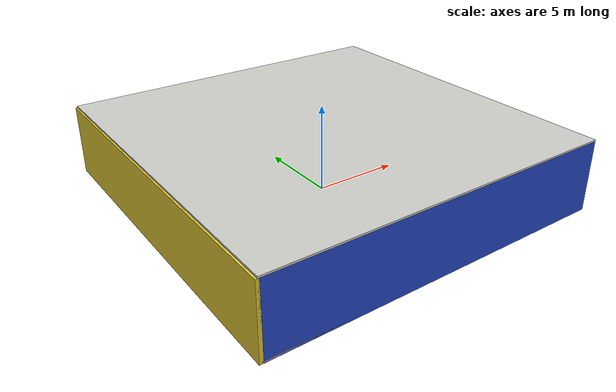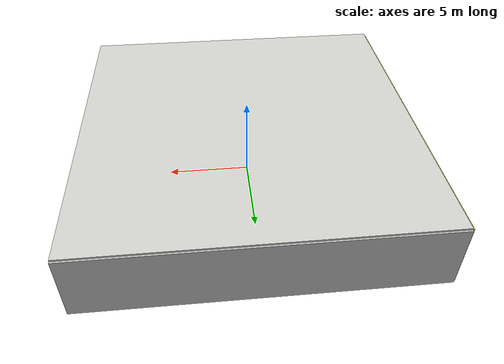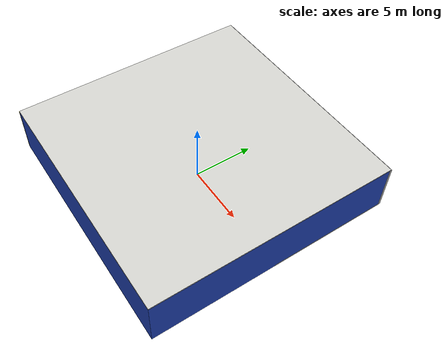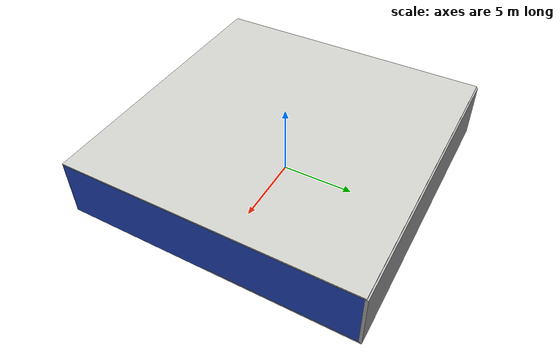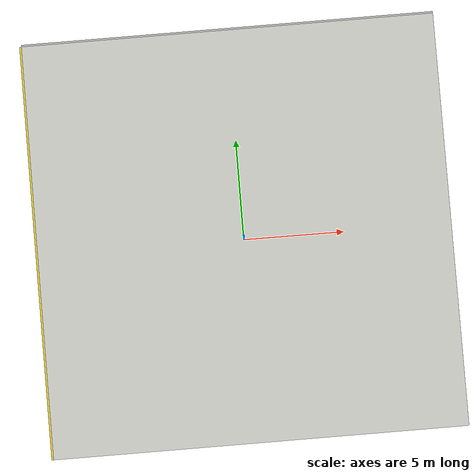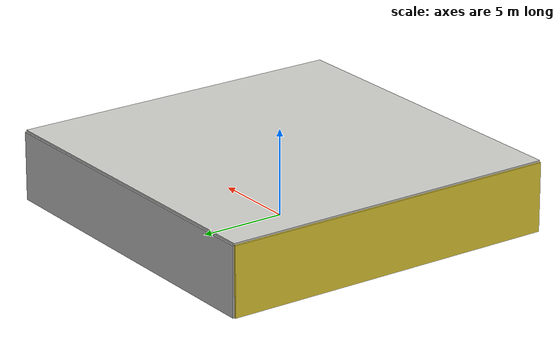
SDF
<sdf version="1.4">
 <world name="default">
  <physics type="ode">
   <max_step_size>0.001</max_step_size>
   <real_time_factor>1</real_time_factor>
   <real_time_update_rate>1000</real_time_update_rate>
   <gravity>0 0 -9.8</gravity>
  </physics>
  <scene><ambient>0.4 0.4 0.4 1</ambient><background>0.7 0.7 0.7 1</background><shadows>1</shadows></scene>
  <model name="Surrounding">
   <static>1</static>
   <link name="Ceiling">
    <collision name="Ceiling_Collision"><geometry><box><size>20 20 0.1</size></box></geometry></collision>
    <visual name="Ceiling_Visual">
     <geometry><box><size>20 20 0.1</size></box></geometry>
     <material>
      <script><uri>file://media/materials/scripts/gazebo.material</uri><name>Gazebo/CeilingTiled</name></script>
     </material>
    </visual>
    <pose>0 0 4.05 0 0 0</pose>
   </link>
   <link name="Wall_South">
    <collision name="Wall_South_Collision">
     <geometry><box><size>20 0 4</size></box></geometry>
     <pose>0 0 2 0 -0 0</pose>
    </collision>
    <visual name="Wall_South_Visual">
     <pose>0 0 2 0 -0 0</pose>
     <geometry><box><size>20 0 4</size></box></geometry>
     <material>
      <script><uri>file://media/materials/scripts/gazebo.material</uri><name>Gazebo/BlueLaser</name></script>
     </material>
    </visual>
    <velocity_decay><linear>0</linear><angular>0</angular></velocity_decay>
    <pose>0 -10 0 0 -0 0</pose>
   </link>
   <link name="Wall_East">
    <collision name="Wall_21_Collision">
     <geometry><box><size>20 0 4</size></box></geometry>
     <pose>0 0 2 0 -0 0</pose>
    </collision>
    <visual name="Wall_21_Visual">
     <pose>0 0 2 0 -0 0</pose>
     <geometry><box><size>20 0 4</size></box></geometry>
     <material>
      <script><uri>file://media/materials/scripts/gazebo.material</uri><name>Gazebo/BlueLaser</name></script>
     </material>
    </visual>
    <velocity_decay><linear>0</linear><angular>0</angular></velocity_decay>
    <pose>10 0 0 0 -0 1.5708</pose>
   </link>
   <link name="Wall_North">
    <collision name="Wall_22_Collision">
     <geometry><box><size>20 0.2 4</size></box></geometry>
     <pose>0 0 2 0 -0 0</pose>
    </collision>
    <visual name="Wall_22_Visual">
     <pose>0 0 2 0 -0 0</pose>
     <geometry><box><size>20 0.2 4</size></box></geometry>
     <material>
      <script><uri>file://media/materials/scripts/gazebo.material</uri><name>Gazebo/JointAnchor</name></script>
     </material>
    </visual>
    <velocity_decay><linear>0</linear><angular>0</angular></velocity_decay>
    <pose>0 10 0 0 -0 0</pose>
   </link>
   <link name="Wall_West">
    <collision name="Wall_23_Collision">
     <geometry><box><size>20 0.2 4</size></box></geometry>
     <pose>0 0 2 0 -0 0</pose>
    </collision>
    <visual name="Wall_23_Visual">
     <pose>0 0 2 0 -0 0</pose>
     <geometry><box><size>20 0.2 4</size></box></geometry>
     <material>
      <script><uri>file://media/materials/scripts/gazebo.material</uri><name>Gazebo/ZincYellow</name></script>
     </material>
    </visual>
    <velocity_decay><linear>0</linear><angular>0</angular></velocity_decay>
    <pose>-10 0 0 0 0 -1.5708</pose>
   </link>
   <link name="Ground_link">
    <collision name="collision">
     <pose>0 0 .05 0 -0 0</pose>
     <geometry><box><size>20 20 0.1</size></box></geometry>
    </collision>
    <visual name="visual">
     <pose>0 0 .05 0 -0 0</pose>
     <geometry><box><size>20 20 0.1</size></box></geometry>
     <material>
      <script><uri>file://media/materials/scripts/gazebo.material</uri><name>Gazebo/Pioneer2Body</name></script>
     </material>
    </visual>
   </link>
   <static>1</static>
  </model>
  <spherical_coordinates>
   <surface_model>EARTH_WGS84</surface_model>
   <latitude_deg>0</latitude_deg>
   <longitude_deg>0</longitude_deg>
   <elevation>0</elevation>
   <heading_deg>0</heading_deg>
  </spherical_coordinates>
  <light name="lightball_0" type="diffuse">
   <diffuse>0.8 0.8 0.8 1</diffuse>
   <specular>0.2 0.2 0.2 1</specular>
   <attenuation>
    <range>100</range>
    <constant>0.7</constant>
    <linear>0.01</linear>
    <quadratic>0.001</quadratic>
   </attenuation>
   <direction>-0.5 0.1 -0.9</direction>
   <pose>1.16155036056 -6.20217201834 2.44982268548 0 0 0</pose>
  </light>
  <light name="lightball_1" type="diffuse">
   <diffuse>0.8 0.8 0.8 1</diffuse>
   <specular>0.2 0.2 0.2 1</specular>
   <attenuation>
    <range>100</range>
    <constant>0.7</constant>
    <linear>0.01</linear>
    <quadratic>0.001</quadratic>
   </attenuation>
   <direction>-0.5 0.1 -0.9</direction>
   <pose>6.27709707493 -9.23225085441 3.34910532989 0 0 0</pose>
  </light>
  <light name="lightball_2" type="diffuse">
   <diffuse>0.8 0.8 0.8 1</diffuse>
   <specular>0.2 0.2 0.2 1</specular>
   <attenuation>
    <range>100</range>
    <constant>0.7</constant>
    <linear>0.01</linear>
    <quadratic>0.001</quadratic>
   </attenuation>
   <direction>-0.5 0.1 -0.9</direction>
   <pose>4.38322816176 -3.94230680346 1.53889888358 0 0 0</pose>
  </light>
  <light name="lightball_3" type="diffuse">
   <diffuse>0.8 0.8 0.8 1</diffuse>
   <specular>0.2 0.2 0.2 1</specular>
   <attenuation>
    <range>100</range>
    <constant>0.7</constant>
    <linear>0.01</linear>
    <quadratic>0.001</quadratic>
   </attenuation>
   <direction>-0.5 0.1 -0.9</direction>
   <pose>-4.43868544958 -8.24880636327 2.87649377899 0 0 0</pose>
  </light>
  <light name="lightball_4" type="diffuse">
   <diffuse>0.8 0.8 0.8 1</diffuse>
   <specular>0.2 0.2 0.2 1</specular>
   <attenuation>
    <range>100</range>
    <constant>0.7</constant>
    <linear>0.01</linear>
    <quadratic>0.001</quadratic>
   </attenuation>
   <direction>-0.5 0.1 -0.9</direction>
   <pose>-7.95869930169 4.29964620362 2.07999902564 0 0 0</pose>
  </light>
  <light name="lightball_5" type="diffuse">
   <diffuse>0.8 0.8 0.8 1</diffuse>
   <specular>0.2 0.2 0.2 1</specular>
   <attenuation>
    <range>100</range>
    <constant>0.7</constant>
    <linear>0.01</linear>
    <quadratic>0.001</quadratic>
   </attenuation>
   <direction>-0.5 0.1 -0.9</direction>
   <pose>-5.33740133415 -1.70027888765 2.43714187837 0 0 0</pose>
  </light>
  <light name="lightball_6" type="diffuse">
   <diffuse>0.8 0.8 0.8 1</diffuse>
   <specular>0.2 0.2 0.2 1</specular>
   <attenuation>
    <range>100</range>
    <constant>0.7</constant>
    <linear>0.01</linear>
    <quadratic>0.001</quadratic>
   </attenuation>
   <direction>-0.5 0.1 -0.9</direction>
   <pose>-7.2815102096 -0.0875897709667 0.812180673969 0 0 0</pose>
  </light>
  <include><uri>model://cabinet</uri><pose>-7.85376249304 -0.793987595924 0 0 0 1.83619630594</pose></include>
  <include><uri>model://cabinet</uri><pose>-3.74140412264 -4.01833956944 0 0 0 2.26110380763</pose></include>
  <include><uri>model://table</uri><pose>-2.27165861195 -7.35466601138 0 0 0 1.33045506712</pose></include>
  <include>
   <uri>model://robocup_3Dsim_goal</uri>
   <pose>-1.59824564422 -5.28441835259 0 0 0 3.07859886992</pose>
  </include>
  <include><uri>model://cabinet</uri><pose>1.02616272572 6.95116432599 0 0 0 2.6015673885</pose></include>
  <include><uri>model://cabinet</uri><pose>7.41594678243 -4.26684883739 0 0 0 1.04644132158</pose></include>
 </world>
</sdf>

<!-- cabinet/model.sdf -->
<sdf version="1.5">
  <model name="cabinet">
    <static>true</static>
    <link name="cabinet_bottom_plate">
      <inertial>
        <pose>0 0 -1 0 0 0</pose>
        <inertia>
          <ixx>2.050000</ixx>
          <ixy>0</ixy>
          <ixz>0</ixz>
          <iyy>2.050000</iyy>
          <iyz>0</iyz>
          <izz>2.050000</izz>
        </inertia>
        <mass>25.000000</mass>
      </inertial>
      <collision name="cabinet_bottom_plate_geom">
        <pose>0 0 0.010000 0 0 0</pose>
        <geometry>
          <box>
            <size>0.450000 0.450000 0.020000</size>
          </box>
        </geometry>
      </collision>
      <visual name="cabinet_bottom_plate_geom_visual">
        <pose>0 0 0.010000 0 0 0</pose>
        <geometry>
          <box>
            <size>0.450000 0.450000 0.020000</size>
          </box>
        </geometry>
        <material>
          <script>
            <uri>model://media/materials/scripts/gazebo.material</uri>
            <name>Gazebo/Wood</name>
          </script>
        </material>
      </visual>
      <collision name="cabinet_bottom_plate_geom_cabinet_back_plate">
        <pose>0.235000 0 0.510000 0 0 0</pose>
        <geometry>
          <box>
            <size>0.020000 0.450000 1.020000</size>
          </box>
        </geometry>
      </collision>
      <visual name="cabinet_bottom_plate_geom_cabinet_back_plate_visual">
        <pose>0.235000 0 0.510000 0 0 0</pose>
        <geometry>
          <box>
            <size>0.020000 0.450000 1.020000</size>
          </box>
        </geometry>
        <material>
          <script>
            <uri>model://media/materials/scripts/gazebo.material</uri>
            <name>Gazebo/Wood</name>
          </script>
        </material>
      </visual>
      <collision name="cabinet_bottom_plate_geom_cabinet_left_plate">
        <pose>0 0.235000 0.510000 0 0 0</pose>
        <geometry>
          <box>
            <size>0.450000 0.020000 1.020000</size>
          </box>
        </geometry>
      </collision>
      <visual name="cabinet_bottom_plate_geom_cabinet_left_plate_visual">
        <pose>0 0.235000 0.510000 0 0 0</pose>
        <geometry>
          <box>
            <size>0.450000 0.020000 1.020000</size>
          </box>
        </geometry>
        <material>
          <script>
            <uri>model://media/materials/scripts/gazebo.material</uri>
            <name>Gazebo/Wood</name>
          </script>
        </material>
      </visual>
      <collision name="cabinet_bottom_plate_geom_cabinet_middle_plate">
        <pose>0 0 0.510000 0 0 0</pose>
        <geometry>
          <box>
            <size>0.450000 0.450000 0.020000</size>
          </box>
        </geometry>
      </collision>
      <visual name="cabinet_bottom_plate_geom_cabinet_middle_plate_visual">
        <pose>0 0 0.510000 0 0 0</pose>
        <geometry>
          <box>
            <size>0.450000 0.450000 0.020000</size>
          </box>
        </geometry>
        <material>
          <script>
            <uri>model://media/materials/scripts/gazebo.material</uri>
            <name>Gazebo/Wood</name>
          </script>
        </material>
      </visual>
      <collision name="cabinet_bottom_plate_geom_cabinet_right_plate">
        <pose>0 -0.235000 0.510000 0 0 0</pose>
        <geometry>
          <box>
            <size>0.450000 0.020000 1.020000</size>
          </box>
        </geometry>
      </collision>
      <visual name="cabinet_bottom_plate_geom_cabinet_right_plate_visual">
        <pose>0 -0.235000 0.510000 0 0 0</pose>
        <geometry>
          <box>
            <size>0.450000 0.020000 1.020000</size>
          </box>
        </geometry>
        <material>
          <script>
            <uri>model://media/materials/scripts/gazebo.material</uri>
            <name>Gazebo/Wood</name>
          </script>
        </material>
      </visual>
      <collision name="cabinet_bottom_plate_geom_cabinet_top_plate">
        <pose>0 0 1.010000 0 0 0</pose>
        <geometry>
          <box>
            <size>0.450000 0.450000 0.020000</size>
          </box>
        </geometry>
      </collision>
      <visual name="cabinet_bottom_plate_geom_cabinet_top_plate_visual">
        <pose>0 0 1.010000 0 0 0</pose>
        <geometry>
          <box>
            <size>0.450000 0.450000 0.020000</size>
          </box>
        </geometry>
        <material>
          <script>
            <uri>model://media/materials/scripts/gazebo.material</uri>
            <name>Gazebo/Wood</name>
          </script>
        </material>
      </visual>
    </link>
  </model>
</sdf>

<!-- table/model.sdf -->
<sdf version="1.5">
  <model name="table">
    <static>true</static>
    <link name="link">
      <collision name="surface">
        <pose>0 0 1.0 0 0 0</pose>
        <geometry>
          <box>
            <size>1.5 0.8 0.03</size>
          </box>
        </geometry>
        <surface>
          <friction>
            <ode>
              <mu>0.6</mu>
              <mu2>0.6</mu2>
            </ode>
          </friction>
        </surface>
      </collision>
      <visual name="visual1">
        <pose>0 0 1.0 0 0 0</pose>
        <geometry>
          <box>
            <size>1.5 0.8 0.03</size>
          </box>
        </geometry>
        <material>
          <script>
            <uri>model://media/materials/scripts/gazebo.material</uri>
            <name>Gazebo/Wood</name>
          </script>
        </material>
      </visual>
      <collision name="front_left_leg">
        <pose>0.68 0.38 0.5 0 0 0</pose>
        <geometry>
          <cylinder>
            <radius>0.02</radius>
            <length>1.0</length>
          </cylinder>
        </geometry>
      </collision>
      <visual name="front_left_leg">
        <pose>0.68 0.38 0.5 0 0 0</pose>
        <geometry>
          <cylinder>
            <radius>0.02</radius>
            <length>1.0</length>
          </cylinder>
        </geometry>
        <material>
          <script>
            <uri>model://media/materials/scripts/gazebo.material</uri>
            <name>Gazebo/Grey</name>
          </script>
        </material>
      </visual>
      <collision name="front_right_leg">
        <pose>0.68 -0.38 0.5 0 0 0</pose>
        <geometry>
          <cylinder>
            <radius>0.02</radius>
            <length>1.0</length>
          </cylinder>
        </geometry>
      </collision>
      <visual name="front_right_leg">
        <pose>0.68 -0.38 0.5 0 0 0</pose>
        <geometry>
          <cylinder>
            <radius>0.02</radius>
            <length>1.0</length>
          </cylinder>
        </geometry>
        <material>
          <script>
            <uri>model://media/materials/scripts/gazebo.material</uri>
            <name>Gazebo/Grey</name>
          </script>
        </material>
      </visual>
      <collision name="back_right_leg">
        <pose>-0.68 -0.38 0.5 0 0 0</pose>
        <geometry>
          <cylinder>
            <radius>0.02</radius>
            <length>1.0</length>
          </cylinder>
        </geometry>
      </collision>
      <visual name="back_right_leg">
        <pose>-0.68 -0.38 0.5 0 0 0</pose>
        <geometry>
          <cylinder>
            <radius>0.02</radius>
            <length>1.0</length>
          </cylinder>
        </geometry>
        <material>
          <script>
            <uri>model://media/materials/scripts/gazebo.material</uri>
            <name>Gazebo/Grey</name>
          </script>
        </material>
      </visual>
      <collision name="back_left_leg">
        <pose>-0.68 0.38 0.5 0 0 0</pose>
        <geometry>
          <cylinder>
            <radius>0.02</radius>
            <length>1.0</length>
          </cylinder>
        </geometry>
      </collision>
      <visual name="back_left_leg">
        <pose>-0.68 0.38 0.5 0 0 0</pose>
        <geometry>
          <cylinder>
            <radius>0.02</radius>
            <length>1.0</length>
          </cylinder>
        </geometry>
        <material>
          <script>
            <uri>model://media/materials/scripts/gazebo.material</uri>
            <name>Gazebo/Grey</name>
          </script>
        </material>
      </visual>
    </link>
  </model>
</sdf>

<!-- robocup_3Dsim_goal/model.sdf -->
<sdf version="1.5">
  <model name="robocup_3d_goal">
    <static>true</static>
    <link name="left_post">
      <pose>0 1.05 0.45 0 0 0</pose>
      <collision name="collision">
        <geometry>
          <cylinder>
            <radius>0.05</radius>
            <length>0.9</length>
          </cylinder>
        </geometry>
      </collision>
      <visual name="visual">
        <geometry>
          <cylinder>
            <radius>0.05</radius>
            <length>0.9</length>
          </cylinder>
        </geometry>
        <material>
          <script>
            <uri>file://media/materials/scripts/gazebo.material</uri>
            <name>Gazebo/ZincYellow</name>
          </script>
        </material>
      </visual>
    </link>
    <link name="left_support_horiz_lower">
      <pose>0.30 1.05 0.01 0 0 0</pose>
      <collision name="collision">
        <geometry>
          <box>
            <size>0.50 0.02 0.02</size>
          </box>
        </geometry>
      </collision>
      <visual name="visual">
        <geometry>
          <box>
            <size>0.50 0.02 0.02</size>
          </box>
        </geometry>
        <material>
          <script>
            <uri>file://media/materials/scripts/gazebo.material</uri>
            <name>Gazebo/White</name>
          </script>
        </material>
      </visual>
    </link>
    <link name="left_support_horiz_upper">
      <pose>0.30 1.05 0.79 0 0 0</pose>
      <collision name="collision">
        <geometry>
          <box>
            <size>0.50 0.02 0.02</size>
          </box>
        </geometry>
      </collision>
      <visual name="visual">
        <geometry>
          <box>
            <size>0.50 0.02 0.02</size>
          </box>
        </geometry>
        <material>
          <script>
            <uri>file://media/materials/scripts/gazebo.material</uri>
            <name>Gazebo/White</name>
          </script>
        </material>
      </visual>
    </link>
    <link name="left_support_vertical">
      <pose>0.56 1.05 0.4 0 1.5708 0</pose>
      <collision name="collision">
        <geometry>
          <box>
            <size>0.80 0.02 0.02</size>
          </box>
        </geometry>
      </collision>
      <visual name="visual">
        <geometry>
          <box>
            <size>0.80 0.02 0.02</size>
          </box>
        </geometry>
        <material>
          <script>
            <uri>file://media/materials/scripts/gazebo.material</uri>
            <name>Gazebo/White</name>
          </script>
        </material>
      </visual>
    </link>
    <link name="right_support_horiz_lower">
      <pose>0.30 -1.05 0.01 0 0 0</pose>
      <collision name="collision">
        <geometry>
          <box>
            <size>0.50 0.02 0.02</size>
          </box>
        </geometry>
      </collision>
      <visual name="visual">
        <geometry>
          <box>
            <size>0.50 0.02 0.02</size>
          </box>
        </geometry>
        <material>
          <script>
            <uri>file://media/materials/scripts/gazebo.material</uri>
            <name>Gazebo/White</name>
          </script>
        </material>
      </visual>
    </link>
    <link name="right_support_horiz_upper">
      <pose>0.30 -1.05 0.79 0 0 0</pose>
      <collision name="collision">
        <geometry>
          <box>
            <size>0.50 0.02 0.02</size>
          </box>
        </geometry>
      </collision>
      <visual name="visual">
        <geometry>
          <box>
            <size>0.50 0.02 0.02</size>
          </box>
        </geometry>
        <material>
          <script>
            <uri>file://media/materials/scripts/gazebo.material</uri>
            <name>Gazebo/White</name>
          </script>
        </material>
      </visual>
    </link>
    <link name="right_support_vertical">
      <pose>0.56 -1.05 0.4 0 1.5708 0</pose>
      <collision name="collision">
        <geometry>
          <box>
            <size>0.80 0.02 0.02</size>
          </box>
        </geometry>
      </collision>
      <visual name="visual">
        <geometry>
          <box>
            <size>0.80 0.02 0.02</size>
          </box>
        </geometry>
        <material>
          <script>
            <uri>file://media/materials/scripts/gazebo.material</uri>
            <name>Gazebo/White</name>
          </script>
        </material>
      </visual>
    </link>
    <link name="center_support_horiz_lower">
      <pose>0.56 0 0.01 0 1.5708 0</pose>
      <collision name="collision">
        <geometry>
          <box>
            <size>0.02 2.08 0.02</size>
          </box>
        </geometry>
      </collision>
      <visual name="visual">
        <geometry>
          <box>
            <size>0.02 2.08 0.02</size>
          </box>
        </geometry>
        <material>
          <script>
            <uri>file://media/materials/scripts/gazebo.material</uri>
            <name>Gazebo/White</name>
          </script>
        </material>
      </visual>
    </link>
    <link name="center_support_horiz_upper">
      <pose>0.56 0 0.79 0 1.5708 0</pose>
      <collision name="collision">
        <geometry>
          <box>
            <size>0.02 2.08 0.02</size>
          </box>
        </geometry>
      </collision>
      <visual name="visual">
        <geometry>
          <box>
            <size>0.02 2.08 0.02</size>
          </box>
        </geometry>
        <material>
          <script>
            <uri>file://media/materials/scripts/gazebo.material</uri>
            <name>Gazebo/White</name>
          </script>
        </material>
      </visual>
    </link>
    <link name="right_post">
      <pose>0 -1.05 0.45 0 0 0</pose>
      <collision name="collision">
        <geometry>
          <cylinder>
            <radius>0.05</radius>
            <length>0.9</length>
          </cylinder>
        </geometry>
      </collision>
      <visual name="visual">
        <geometry>
          <cylinder>
            <radius>0.05</radius>
            <length>0.9</length>
          </cylinder>
        </geometry>
        <material>
          <script>
            <uri>file://media/materials/scripts/gazebo.material</uri>
            <name>Gazebo/ZincYellow</name>
          </script>
        </material>
      </visual>
    </link>
    <link name="crossbar">
      <pose>0 0 0.85 1.57 1.57 0</pose>
      <collision name="collision">
        <geometry>
          <cylinder>
            <radius>0.05</radius>
            <length>2.0</length>
          </cylinder>
        </geometry>
      </collision>
      <visual name="visual">
        <geometry>
          <cylinder>
            <radius>0.05</radius>
            <length>2.0</length>
          </cylinder>
        </geometry>
        <material>
          <script>
            <uri>file://media/materials/scripts/gazebo.material</uri>
            <name>Gazebo/ZincYellow</name>
          </script>
        </material>
      </visual>
    </link>
    <link name="center_net">
      <pose>0.56 0 0.40 0 0 0</pose>
      <collision name="collision">
        <geometry>
          <box>
            <size>0.01 2.1 0.80</size>
          </box>
        </geometry>
      </collision>
      <visual name="visual">
        <geometry>
          <box>
            <size>0.01 2.1 0.80</size>
          </box>
        </geometry>
        <material>
          <script>
            <uri>model://../model_source/models/robocup09_spl_field/materials/scripts/</uri>
            <uri>model://../model_source/models/robocup09_spl_field/materials/textures/</uri>
            <name>RoboCup/Net</name>
          </script>
        </material>
      </visual>
    </link>
    <link name="left_net">
      <pose>0.30 1.05 0.40 0 0 0</pose>
      <collision name="collision">
        <geometry>
          <box>
            <size>0.50 0.01 0.76</size>
          </box>
        </geometry>
      </collision>
      <visual name="visual">
        <geometry>
          <box>
            <size>0.50 0.01 0.76</size>
          </box>
        </geometry>
        <material>
          <script>
            <uri>model://../model_source/models/robocup09_spl_field/materials/scripts/</uri>
            <uri>model://../model_source/models/robocup09_spl_field/materials/textures/</uri>
            <name>RoboCup/Net</name>
          </script>
        </material>
      </visual>
    </link>
    <link name="right_net">
      <pose>0.30 -1.05 0.40 0 0 0</pose>
      <collision name="collision">
        <geometry>
          <box>
            <size>0.50 0.01 0.76</size>
          </box>
        </geometry>
      </collision>
      <visual name="visual">
        <geometry>
          <box>
            <size>0.50 0.01 0.76</size>
          </box>
        </geometry>
        <material>
          <script>
            <uri>model://../model_source/models/robocup09_spl_field/materials/scripts/</uri>
            <uri>model://../model_source/models/robocup09_spl_field/materials/textures/</uri>
            <name>RoboCup/Net</name>
          </script>
        </material>
      </visual>
    </link>
  </model>
</sdf>
